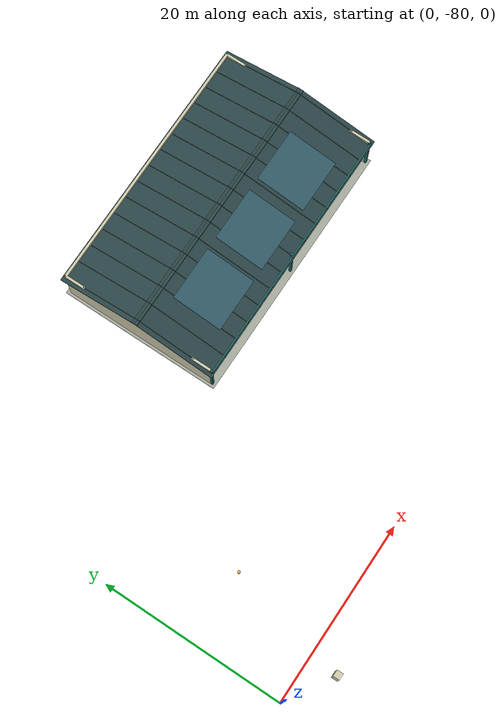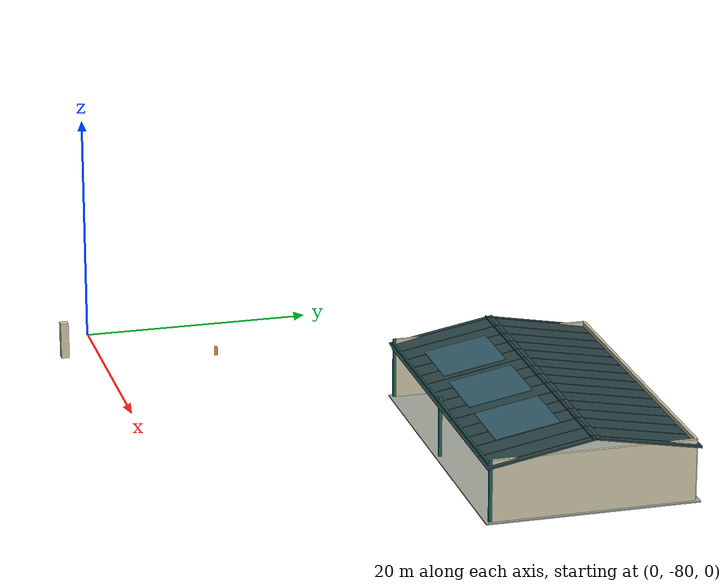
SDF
<sdf version="1.9">
 <world name="fleetscope_estate">
  <model name="logistics_warehouse">
   <static>true</static>
   <pose>36 -49 0 0 0 0</pose>
   <link name="structure">
    <visual name="visual_0">
     <pose>0 0 0.05 0 0 0</pose>
     <geometry><box><size>28.8 17.8 0.1</size></box></geometry>
     <material>
      <ambient>0.63 0.65 0.6 1</ambient>
      <diffuse>0.63 0.65 0.6 1</diffuse>
      <specular>.08 .08 .08 1</specular>
     </material>
     <cast_shadows>false</cast_shadows>
    </visual>
    <collision name="collision_0">
     <pose>0 0 0.05 0 0 0</pose>
     <geometry><box><size>28.8 17.8 0.1</size></box></geometry>
    </collision>
    <visual name="visual_1">
     <pose>0 8.5 2.65 0 0 0</pose>
     <geometry><box><size>28 0.25 5.3</size></box></geometry>
     <material>
      <ambient>0.8 0.78 0.66 1</ambient>
      <diffuse>0.8 0.78 0.66 1</diffuse>
      <specular>.08 .08 .08 1</specular>
     </material>
    </visual>
    <collision name="collision_1">
     <pose>0 8.5 2.65 0 0 0</pose>
     <geometry><box><size>28 0.25 5.3</size></box></geometry>
    </collision>
    <visual name="visual_2">
     <pose>-14 0 2.65 0 0 0</pose>
     <geometry><box><size>0.25 17 5.3</size></box></geometry>
     <material>
      <ambient>0.8 0.78 0.66 1</ambient>
      <diffuse>0.8 0.78 0.66 1</diffuse>
      <specular>.08 .08 .08 1</specular>
     </material>
    </visual>
    <collision name="collision_2">
     <pose>-14 0 2.65 0 0 0</pose>
     <geometry><box><size>0.25 17 5.3</size></box></geometry>
    </collision>
    <visual name="visual_3">
     <pose>14 0 2.65 0 0 0</pose>
     <geometry><box><size>0.25 17 5.3</size></box></geometry>
     <material>
      <ambient>0.8 0.78 0.66 1</ambient>
      <diffuse>0.8 0.78 0.66 1</diffuse>
      <specular>.08 .08 .08 1</specular>
     </material>
    </visual>
    <collision name="collision_3">
     <pose>14 0 2.65 0 0 0</pose>
     <geometry><box><size>0.25 17 5.3</size></box></geometry>
    </collision>
    <visual name="visual_4">
     <pose>-14 -8.5 2.65 0 0 0</pose>
     <geometry><box><size>0.26 0.26 5.3</size></box></geometry>
     <material>
      <ambient>0.12 0.38 0.36 1</ambient>
      <diffuse>0.12 0.38 0.36 1</diffuse>
      <specular>.08 .08 .08 1</specular>
     </material>
    </visual>
    <collision name="collision_4">
     <pose>-14 -8.5 2.65 0 0 0</pose>
     <geometry><box><size>0.26 0.26 5.3</size></box></geometry>
    </collision>
    <visual name="visual_5">
     <pose>0 -8.5 2.65 0 0 0</pose>
     <geometry><box><size>0.26 0.26 5.3</size></box></geometry>
     <material>
      <ambient>0.12 0.38 0.36 1</ambient>
      <diffuse>0.12 0.38 0.36 1</diffuse>
      <specular>.08 .08 .08 1</specular>
     </material>
    </visual>
    <collision name="collision_5">
     <pose>0 -8.5 2.65 0 0 0</pose>
     <geometry><box><size>0.26 0.26 5.3</size></box></geometry>
    </collision>
    <visual name="visual_6">
     <pose>14 -8.5 2.65 0 0 0</pose>
     <geometry><box><size>0.26 0.26 5.3</size></box></geometry>
     <material>
      <ambient>0.12 0.38 0.36 1</ambient>
      <diffuse>0.12 0.38 0.36 1</diffuse>
      <specular>.08 .08 .08 1</specular>
     </material>
    </visual>
    <collision name="collision_6">
     <pose>14 -8.5 2.65 0 0 0</pose>
     <geometry><box><size>0.26 0.26 5.3</size></box></geometry>
    </collision>
    <visual name="visual_7">
     <pose>0 -4.25 5.58 0.18 0 0</pose>
     <geometry><box><size>29 9.3 0.16</size></box></geometry>
     <material>
      <ambient>0.16 0.26 0.27 1</ambient>
      <diffuse>0.16 0.26 0.27 1</diffuse>
      <specular>.08 .08 .08 1</specular>
     </material>
    </visual>
    <collision name="collision_7">
     <pose>0 -4.25 5.58 0.18 0 0</pose>
     <geometry><box><size>29 9.3 0.16</size></box></geometry>
    </collision>
    <visual name="visual_8">
     <pose>0 4.25 5.58 -0.18 0 0</pose>
     <geometry><box><size>29 9.3 0.16</size></box></geometry>
     <material>
      <ambient>0.16 0.26 0.27 1</ambient>
      <diffuse>0.16 0.26 0.27 1</diffuse>
      <specular>.08 .08 .08 1</specular>
     </material>
    </visual>
    <collision name="collision_8">
     <pose>0 4.25 5.58 -0.18 0 0</pose>
     <geometry><box><size>29 9.3 0.16</size></box></geometry>
    </collision>
    <visual name="visual_9">
     <pose>-14 -4.25 5.68 0.18 0 0</pose>
     <geometry><box><size>0.045 9.3 0.05</size></box></geometry>
     <material>
      <ambient>0.25 0.29 0.3 1</ambient>
      <diffuse>0.25 0.29 0.3 1</diffuse>
      <specular>.08 .08 .08 1</specular>
     </material>
     <cast_shadows>false</cast_shadows>
    </visual>
    <visual name="visual_10">
     <pose>-14 4.25 5.68 -0.18 0 0</pose>
     <geometry><box><size>0.045 9.3 0.05</size></box></geometry>
     <material>
      <ambient>0.25 0.29 0.3 1</ambient>
      <diffuse>0.25 0.29 0.3 1</diffuse>
      <specular>.08 .08 .08 1</specular>
     </material>
     <cast_shadows>false</cast_shadows>
    </visual>
    <visual name="visual_11">
     <pose>-12 -4.25 5.68 0.18 0 0</pose>
     <geometry><box><size>0.045 9.3 0.05</size></box></geometry>
     <material>
      <ambient>0.25 0.29 0.3 1</ambient>
      <diffuse>0.25 0.29 0.3 1</diffuse>
      <specular>.08 .08 .08 1</specular>
     </material>
     <cast_shadows>false</cast_shadows>
    </visual>
    <visual name="visual_12">
     <pose>-12 4.25 5.68 -0.18 0 0</pose>
     <geometry><box><size>0.045 9.3 0.05</size></box></geometry>
     <material>
      <ambient>0.25 0.29 0.3 1</ambient>
      <diffuse>0.25 0.29 0.3 1</diffuse>
      <specular>.08 .08 .08 1</specular>
     </material>
     <cast_shadows>false</cast_shadows>
    </visual>
    <visual name="visual_13">
     <pose>-10 -4.25 5.68 0.18 0 0</pose>
     <geometry><box><size>0.045 9.3 0.05</size></box></geometry>
     <material>
      <ambient>0.25 0.29 0.3 1</ambient>
      <diffuse>0.25 0.29 0.3 1</diffuse>
      <specular>.08 .08 .08 1</specular>
     </material>
     <cast_shadows>false</cast_shadows>
    </visual>
    <visual name="visual_14">
     <pose>-10 4.25 5.68 -0.18 0 0</pose>
     <geometry><box><size>0.045 9.3 0.05</size></box></geometry>
     <material>
      <ambient>0.25 0.29 0.3 1</ambient>
      <diffuse>0.25 0.29 0.3 1</diffuse>
      <specular>.08 .08 .08 1</specular>
     </material>
     <cast_shadows>false</cast_shadows>
    </visual>
    <visual name="visual_15">
     <pose>-8 -4.25 5.68 0.18 0 0</pose>
     <geometry><box><size>0.045 9.3 0.05</size></box></geometry>
     <material>
      <ambient>0.25 0.29 0.3 1</ambient>
      <diffuse>0.25 0.29 0.3 1</diffuse>
      <specular>.08 .08 .08 1</specular>
     </material>
     <cast_shadows>false</cast_shadows>
    </visual>
    <visual name="visual_16">
     <pose>-8 4.25 5.68 -0.18 0 0</pose>
     <geometry><box><size>0.045 9.3 0.05</size></box></geometry>
     <material>
      <ambient>0.25 0.29 0.3 1</ambient>
      <diffuse>0.25 0.29 0.3 1</diffuse>
      <specular>.08 .08 .08 1</specular>
     </material>
     <cast_shadows>false</cast_shadows>
    </visual>
    <visual name="visual_17">
     <pose>-6 -4.25 5.68 0.18 0 0</pose>
     <geometry><box><size>0.045 9.3 0.05</size></box></geometry>
     <material>
      <ambient>0.25 0.29 0.3 1</ambient>
      <diffuse>0.25 0.29 0.3 1</diffuse>
      <specular>.08 .08 .08 1</specular>
     </material>
     <cast_shadows>false</cast_shadows>
    </visual>
    <visual name="visual_18">
     <pose>-6 4.25 5.68 -0.18 0 0</pose>
     <geometry><box><size>0.045 9.3 0.05</size></box></geometry>
     <material>
      <ambient>0.25 0.29 0.3 1</ambient>
      <diffuse>0.25 0.29 0.3 1</diffuse>
      <specular>.08 .08 .08 1</specular>
     </material>
     <cast_shadows>false</cast_shadows>
    </visual>
    <visual name="visual_19">
     <pose>-4 -4.25 5.68 0.18 0 0</pose>
     <geometry><box><size>0.045 9.3 0.05</size></box></geometry>
     <material>
      <ambient>0.25 0.29 0.3 1</ambient>
      <diffuse>0.25 0.29 0.3 1</diffuse>
      <specular>.08 .08 .08 1</specular>
     </material>
     <cast_shadows>false</cast_shadows>
    </visual>
    <visual name="visual_20">
     <pose>-4 4.25 5.68 -0.18 0 0</pose>
     <geometry><box><size>0.045 9.3 0.05</size></box></geometry>
     <material>
      <ambient>0.25 0.29 0.3 1</ambient>
      <diffuse>0.25 0.29 0.3 1</diffuse>
      <specular>.08 .08 .08 1</specular>
     </material>
     <cast_shadows>false</cast_shadows>
    </visual>
    <visual name="visual_21">
     <pose>-2 -4.25 5.68 0.18 0 0</pose>
     <geometry><box><size>0.045 9.3 0.05</size></box></geometry>
     <material>
      <ambient>0.25 0.29 0.3 1</ambient>
      <diffuse>0.25 0.29 0.3 1</diffuse>
      <specular>.08 .08 .08 1</specular>
     </material>
     <cast_shadows>false</cast_shadows>
    </visual>
    <visual name="visual_22">
     <pose>-2 4.25 5.68 -0.18 0 0</pose>
     <geometry><box><size>0.045 9.3 0.05</size></box></geometry>
     <material>
      <ambient>0.25 0.29 0.3 1</ambient>
      <diffuse>0.25 0.29 0.3 1</diffuse>
      <specular>.08 .08 .08 1</specular>
     </material>
     <cast_shadows>false</cast_shadows>
    </visual>
    <visual name="visual_23">
     <pose>0 -4.25 5.68 0.18 0 0</pose>
     <geometry><box><size>0.045 9.3 0.05</size></box></geometry>
     <material>
      <ambient>0.25 0.29 0.3 1</ambient>
      <diffuse>0.25 0.29 0.3 1</diffuse>
      <specular>.08 .08 .08 1</specular>
     </material>
     <cast_shadows>false</cast_shadows>
    </visual>
    <visual name="visual_24">
     <pose>0 4.25 5.68 -0.18 0 0</pose>
     <geometry><box><size>0.045 9.3 0.05</size></box></geometry>
     <material>
      <ambient>0.25 0.29 0.3 1</ambient>
      <diffuse>0.25 0.29 0.3 1</diffuse>
      <specular>.08 .08 .08 1</specular>
     </material>
     <cast_shadows>false</cast_shadows>
    </visual>
    <visual name="visual_25">
     <pose>2 -4.25 5.68 0.18 0 0</pose>
     <geometry><box><size>0.045 9.3 0.05</size></box></geometry>
     <material>
      <ambient>0.25 0.29 0.3 1</ambient>
      <diffuse>0.25 0.29 0.3 1</diffuse>
      <specular>.08 .08 .08 1</specular>
     </material>
     <cast_shadows>false</cast_shadows>
    </visual>
    <visual name="visual_26">
     <pose>2 4.25 5.68 -0.18 0 0</pose>
     <geometry><box><size>0.045 9.3 0.05</size></box></geometry>
     <material>
      <ambient>0.25 0.29 0.3 1</ambient>
      <diffuse>0.25 0.29 0.3 1</diffuse>
      <specular>.08 .08 .08 1</specular>
     </material>
     <cast_shadows>false</cast_shadows>
    </visual>
    <visual name="visual_27">
     <pose>4 -4.25 5.68 0.18 0 0</pose>
     <geometry><box><size>0.045 9.3 0.05</size></box></geometry>
     <material>
      <ambient>0.25 0.29 0.3 1</ambient>
      <diffuse>0.25 0.29 0.3 1</diffuse>
      <specular>.08 .08 .08 1</specular>
     </material>
     <cast_shadows>false</cast_shadows>
    </visual>
    <visual name="visual_28">
     <pose>4 4.25 5.68 -0.18 0 0</pose>
     <geometry><box><size>0.045 9.3 0.05</size></box></geometry>
     <material>
      <ambient>0.25 0.29 0.3 1</ambient>
      <diffuse>0.25 0.29 0.3 1</diffuse>
      <specular>.08 .08 .08 1</specular>
     </material>
     <cast_shadows>false</cast_shadows>
    </visual>
    <visual name="visual_29">
     <pose>6 -4.25 5.68 0.18 0 0</pose>
     <geometry><box><size>0.045 9.3 0.05</size></box></geometry>
     <material>
      <ambient>0.25 0.29 0.3 1</ambient>
      <diffuse>0.25 0.29 0.3 1</diffuse>
      <specular>.08 .08 .08 1</specular>
     </material>
     <cast_shadows>false</cast_shadows>
    </visual>
    <visual name="visual_30">
     <pose>6 4.25 5.68 -0.18 0 0</pose>
     <geometry><box><size>0.045 9.3 0.05</size></box></geometry>
     <material>
      <ambient>0.25 0.29 0.3 1</ambient>
      <diffuse>0.25 0.29 0.3 1</diffuse>
      <specular>.08 .08 .08 1</specular>
     </material>
     <cast_shadows>false</cast_shadows>
    </visual>
    <visual name="visual_31">
     <pose>8 -4.25 5.68 0.18 0 0</pose>
     <geometry><box><size>0.045 9.3 0.05</size></box></geometry>
     <material>
      <ambient>0.25 0.29 0.3 1</ambient>
      <diffuse>0.25 0.29 0.3 1</diffuse>
      <specular>.08 .08 .08 1</specular>
     </material>
     <cast_shadows>false</cast_shadows>
    </visual>
    <visual name="visual_32">
     <pose>8 4.25 5.68 -0.18 0 0</pose>
     <geometry><box><size>0.045 9.3 0.05</size></box></geometry>
     <material>
      <ambient>0.25 0.29 0.3 1</ambient>
      <diffuse>0.25 0.29 0.3 1</diffuse>
      <specular>.08 .08 .08 1</specular>
     </material>
     <cast_shadows>false</cast_shadows>
    </visual>
    <visual name="visual_33">
     <pose>10 -4.25 5.68 0.18 0 0</pose>
     <geometry><box><size>0.045 9.3 0.05</size></box></geometry>
     <material>
      <ambient>0.25 0.29 0.3 1</ambient>
      <diffuse>0.25 0.29 0.3 1</diffuse>
      <specular>.08 .08 .08 1</specular>
     </material>
     <cast_shadows>false</cast_shadows>
    </visual>
    <visual name="visual_34">
     <pose>10 4.25 5.68 -0.18 0 0</pose>
     <geometry><box><size>0.045 9.3 0.05</size></box></geometry>
     <material>
      <ambient>0.25 0.29 0.3 1</ambient>
      <diffuse>0.25 0.29 0.3 1</diffuse>
      <specular>.08 .08 .08 1</specular>
     </material>
     <cast_shadows>false</cast_shadows>
    </visual>
    <visual name="visual_35">
     <pose>12 -4.25 5.68 0.18 0 0</pose>
     <geometry><box><size>0.045 9.3 0.05</size></box></geometry>
     <material>
      <ambient>0.25 0.29 0.3 1</ambient>
      <diffuse>0.25 0.29 0.3 1</diffuse>
      <specular>.08 .08 .08 1</specular>
     </material>
     <cast_shadows>false</cast_shadows>
    </visual>
    <visual name="visual_36">
     <pose>12 4.25 5.68 -0.18 0 0</pose>
     <geometry><box><size>0.045 9.3 0.05</size></box></geometry>
     <material>
      <ambient>0.25 0.29 0.3 1</ambient>
      <diffuse>0.25 0.29 0.3 1</diffuse>
      <specular>.08 .08 .08 1</specular>
     </material>
     <cast_shadows>false</cast_shadows>
    </visual>
    <visual name="visual_37">
     <pose>14 -4.25 5.68 0.18 0 0</pose>
     <geometry><box><size>0.045 9.3 0.05</size></box></geometry>
     <material>
      <ambient>0.25 0.29 0.3 1</ambient>
      <diffuse>0.25 0.29 0.3 1</diffuse>
      <specular>.08 .08 .08 1</specular>
     </material>
     <cast_shadows>false</cast_shadows>
    </visual>
    <visual name="visual_38">
     <pose>14 4.25 5.68 -0.18 0 0</pose>
     <geometry><box><size>0.045 9.3 0.05</size></box></geometry>
     <material>
      <ambient>0.25 0.29 0.3 1</ambient>
      <diffuse>0.25 0.29 0.3 1</diffuse>
      <specular>.08 .08 .08 1</specular>
     </material>
     <cast_shadows>false</cast_shadows>
    </visual>
    <visual name="visual_39">
     <pose>0 -8.64 4.75 0 0 0</pose>
     <geometry><box><size>28 0.16 0.65</size></box></geometry>
     <material>
      <ambient>0.12 0.38 0.36 1</ambient>
      <diffuse>0.12 0.38 0.36 1</diffuse>
      <specular>.08 .08 .08 1</specular>
     </material>
    </visual>
    <visual name="visual_40">
     <pose>-7.28 -4.25 5.82 0.18 0 0</pose>
     <geometry><box><size>5.88 5.44 0.06</size></box></geometry>
     <material>
      <ambient>0.19 0.35 0.4 1</ambient>
      <diffuse>0.19 0.35 0.4 1</diffuse>
      <specular>.08 .08 .08 1</specular>
     </material>
     <cast_shadows>false</cast_shadows>
    </visual>
    <visual name="visual_41">
     <pose>0 -4.25 5.82 0.18 0 0</pose>
     <geometry><box><size>5.88 5.44 0.06</size></box></geometry>
     <material>
      <ambient>0.19 0.35 0.4 1</ambient>
      <diffuse>0.19 0.35 0.4 1</diffuse>
      <specular>.08 .08 .08 1</specular>
     </material>
     <cast_shadows>false</cast_shadows>
    </visual>
    <visual name="visual_42">
     <pose>7.28 -4.25 5.82 0.18 0 0</pose>
     <geometry><box><size>5.88 5.44 0.06</size></box></geometry>
     <material>
      <ambient>0.19 0.35 0.4 1</ambient>
      <diffuse>0.19 0.35 0.4 1</diffuse>
      <specular>.08 .08 .08 1</specular>
     </material>
     <cast_shadows>false</cast_shadows>
    </visual>
   </link>
  </model>
  <model name="entrance_pillar_5">
   <static>true</static>
   <pose>5 -83 0 0 0 0</pose>
   <link name="structure">
    <visual name="visual_0">
     <pose>0 0 1.6 0 0 0</pose>
     <geometry><box><size>0.7 0.7 3.2</size></box></geometry>
     <material>
      <ambient>0.8 0.78 0.66 1</ambient>
      <diffuse>0.8 0.78 0.66 1</diffuse>
      <specular>.08 .08 .08 1</specular>
     </material>
    </visual>
    <collision name="collision_0">
     <pose>0 0 1.6 0 0 0</pose>
     <geometry><box><size>0.7 0.7 3.2</size></box></geometry>
    </collision>
   </link>
  </model>
  <model name="bollard_8_-70">
   <static>true</static>
   <pose>8 -70 0 0 0 0</pose>
   <link name="structure">
    <visual name="visual_0">
     <pose>0 0 0.4 0 0 0</pose>
     <geometry><cylinder><radius>0.14</radius><length>0.8</length></cylinder></geometry>
     <material>
      <ambient>0.95 0.64 0.13 1</ambient>
      <diffuse>0.95 0.64 0.13 1</diffuse>
      <specular>.08 .08 .08 1</specular>
     </material>
    </visual>
    <collision name="collision_0">
     <pose>0 0 0.4 0 0 0</pose>
     <geometry><cylinder><radius>0.14</radius><length>0.8</length></cylinder></geometry>
    </collision>
   </link>
  </model>
 </world>
</sdf>
